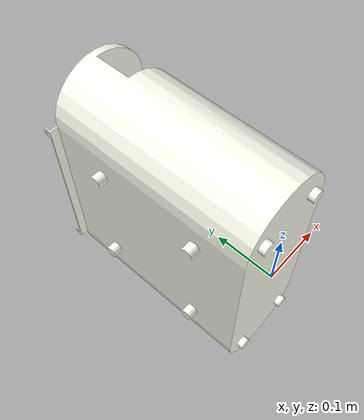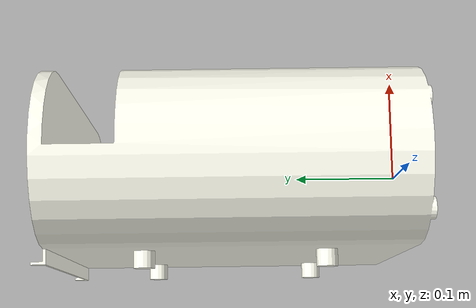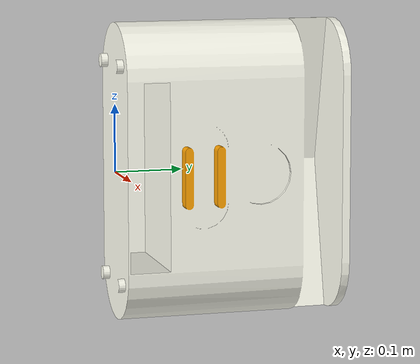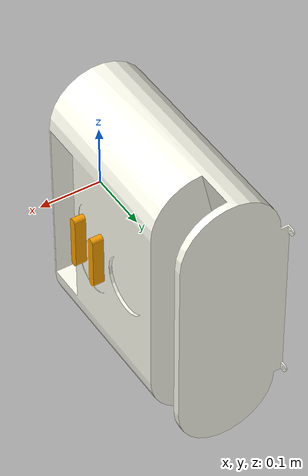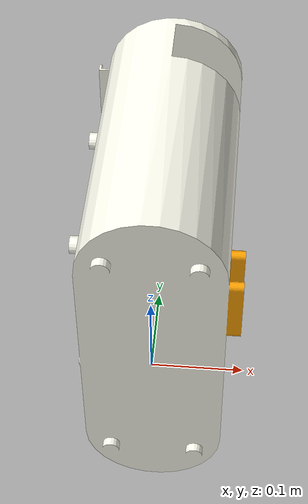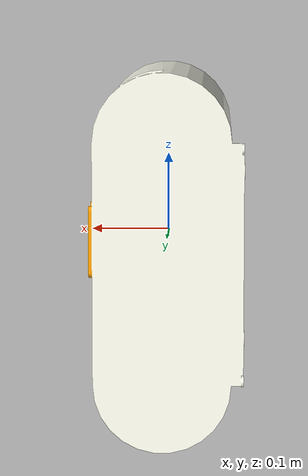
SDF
<?xml version="1.0" ?>
<sdf version="1.6">
  <model name="Charging_Pile">
    <static>true</static>
    <link name="link">
      <collision name="collision">
        <geometry>
          <mesh>
            <scale>1 1 1</scale>
            <uri>model://charging_pile/meshes/charging.dae</uri>
          </mesh>
        </geometry>
      </collision>
      <visual name="visual">
        <geometry>
          <mesh>
            <scale>1 1 1</scale>
            <uri>model://charging_pile/meshes/charging.dae</uri>
          </mesh>
        </geometry>
      </visual>
    </link>
  </model>
</sdf>
